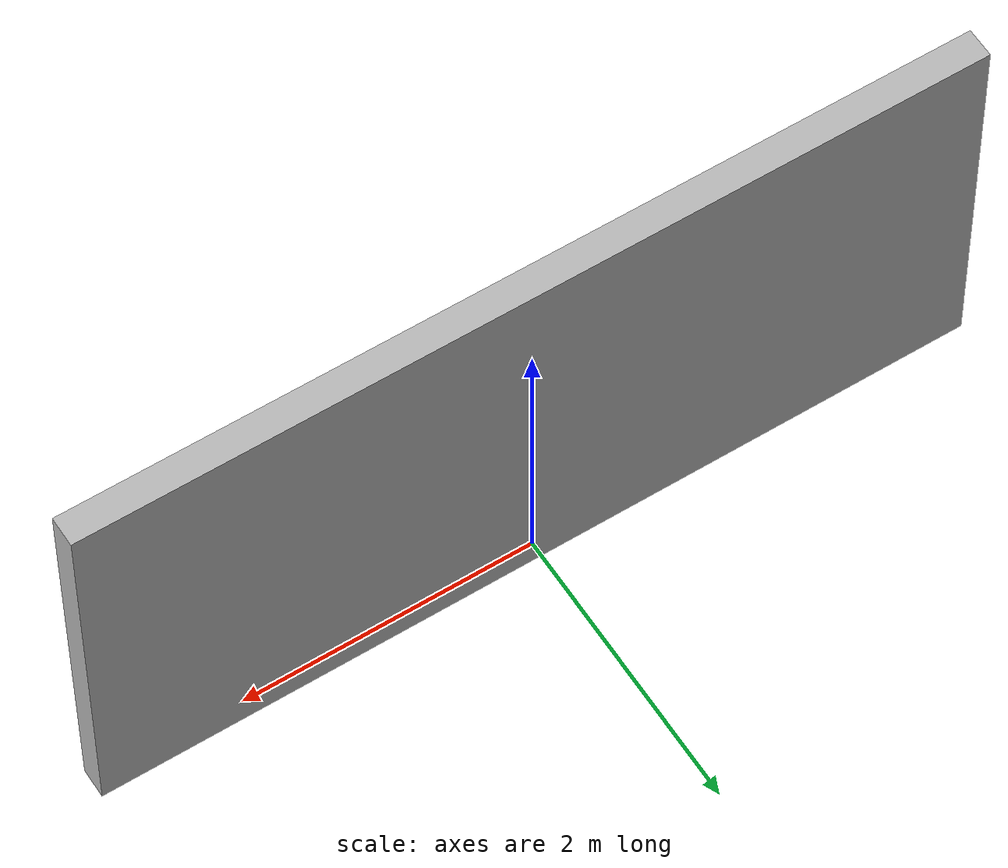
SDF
<?xml version="1.0" ?>
<sdf version="1.4">
  <model name="lab">
    <static>true</static>
    <link name="link">
      <pose>0 0 1.4 0 0 0</pose>
      <collision name="collision">
        <geometry>
          <box>
            <size>6 0.2 2.8</size>
          </box>
        </geometry>
      </collision>
      <visual name="visual">
        <cast_shadows>false</cast_shadows>
        <geometry>
          <box>
            <size>6 0.2 2.8</size>
          </box>
        </geometry>
        <material>
          <script>
            <uri>model://lab/materials/scripts</uri>
            <uri>model://lab/materials/textures</uri>
            <name>vrc/lab_wall18</name>
          </script>
        </material>
      </visual>
    </link>
  </model>
</sdf>
